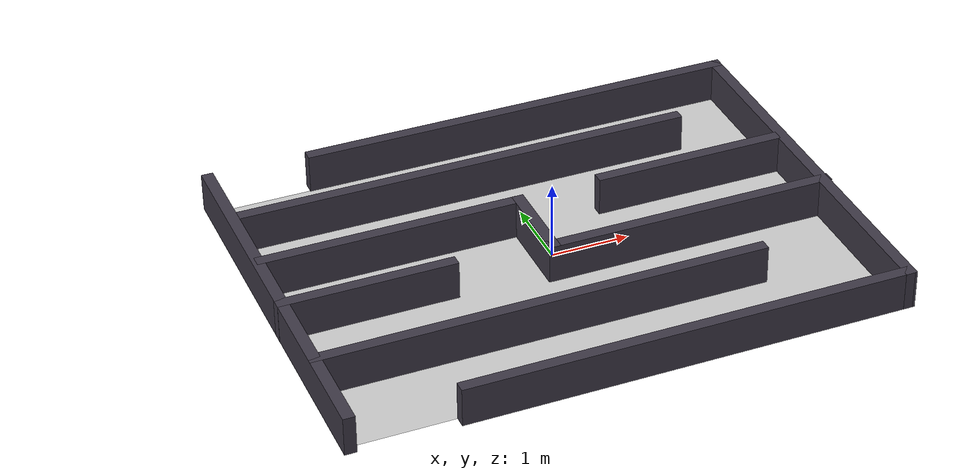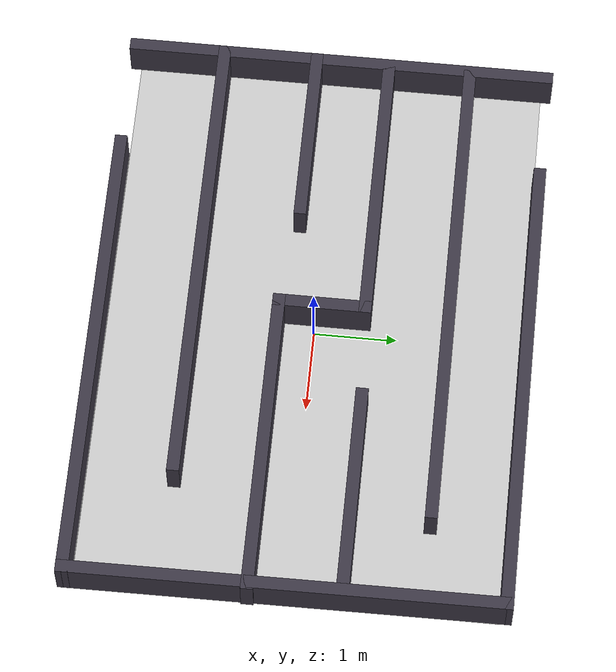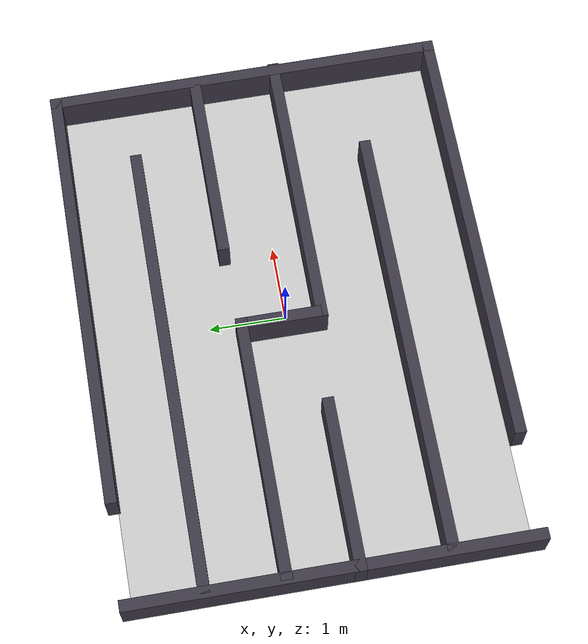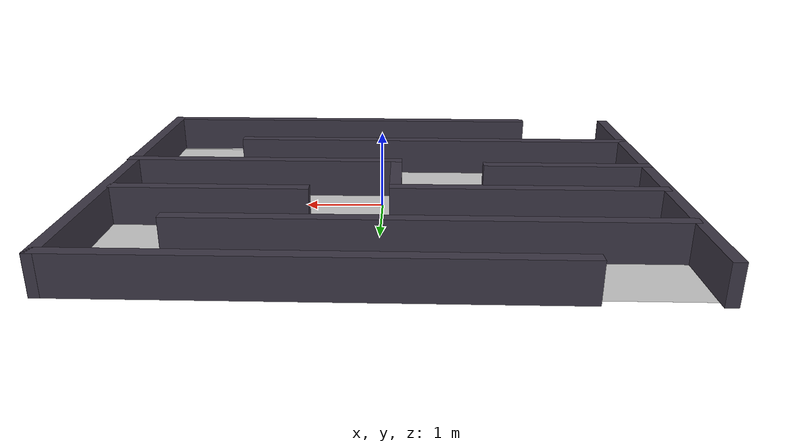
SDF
<?xml version="1.0"?>
<sdf version="1.4">
  <world name="labirinto">
    <scene>
      <ambient>0.8 0.8 0.8 1</ambient>
      <background>0.7 0.7 0.7 1</background>
      <shadows>true</shadows>
    </scene>

  <!-- A global light source  -->
    <include>
      <uri>model://sun</uri>
      <pose> -2.0 2.0 2.0 0 0 0</pose>
    </include>

  <!-- Piso da sala - circuito -->
    <include>
      <uri>model://labirinto/pisosala</uri>
      <pose> 0 0 0 0 0 0</pose>
    </include>

  <!-- paredes do labirinto -->
    <include>
      <uri>model://labirinto/paredes-labirinto</uri>
      <pose> -0.033383 -0.014962 0 0 0 0</pose>
    </include>

  <!-- fisica do mundo -->
    <physics type="ode">
      <real_time_update_rate>1000.0</real_time_update_rate>
      <max_step_size>0.001</max_step_size>
      <real_time_factor>1</real_time_factor>
      <ode>
        <solver>
          <type>quick</type>
          <iters>150</iters>
          <precon_iters>0</precon_iters>
          <sor>1.400000</sor>
          <use_dynamic_moi_rescaling>1</use_dynamic_moi_rescaling>
        </solver>
        <constraints>
          <cfm>0.00001</cfm>
          <erp>0.2</erp>
          <contact_max_correcting_vel>2000.000000</contact_max_correcting_vel>
          <contact_surface_layer>0.01000</contact_surface_layer>
        </constraints>
      </ode>
    </physics>

  <!-- posicao camera inicial -->
    <gui fullscreen='0'>
      <camera name='user_camera'>
        <pose frame=''>0.238775 -6.8831 10.8485 -0 0.979642 1.5602</pose>
        <view_controller>orbit</view_controller>
        <projection_type>perspective</projection_type>
      </camera>
    </gui>

  </world>

</sdf>

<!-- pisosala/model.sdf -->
<sdf version="1.6">
  <model name="piso_sala">
    <static>true</static>
    <link name="course_link">
      <collision name="course_collision">
        <geometry>
          <plane>
            <normal>0 0 1</normal>
            <size>7 5</size>
          </plane>
        </geometry>
        <surface>
          <friction>
            <ode>
              <mu>100</mu>
              <mu2>50</mu2>
            </ode>
          </friction>
        </surface>
      </collision>
      <visual name="course_visual">
        <cast_shadows>false</cast_shadows>
        <geometry>
	        <plane>
            <normal>0 0 1</normal>
            <size>7 5</size>
          </plane>
        </geometry>
	      <material>
          <script>
            <uri>model://caixas_coloridas/pisosala/materials/scripts</uri>
            <uri>model://caixas_coloridas/pisosala/materials/textures</uri>
            <name>pisosala</name>
          </script>
        </material>
      </visual>
    </link>
  </model>
</sdf>

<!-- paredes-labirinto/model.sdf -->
<sdf version='1.7'>
  <model name='labirinto_novo'>
    <pose>-0.045035 0.006 0 0 -0 0</pose>
    <link name='Wall_20'>
      <collision name='Wall_20_Collision'>
        <geometry>
          <box>
            <size>5.25 0.15 0.5</size>
          </box>
        </geometry>
        <pose>0 0 0.25 0 -0 0</pose>
      </collision>
      <visual name='Wall_20_Visual'>
        <pose>0 0 0.25 0 -0 0</pose>
        <geometry>
          <box>
            <size>5.25 0.15 0.5</size>
          </box>
        </geometry>
        <material>
          <script>
            <uri>file://media/materials/scripts/gazebo.material</uri>
            <name>Gazebo/Grey</name>
          </script>
          <ambient>0.239216 0.219608 0.27451 1</ambient>
        </material>
        <meta>
          <layer>0</layer>
        </meta>
      </visual>
      <pose>-3.49296 0.014 0 0 -0 -1.5708</pose>
    </link>
    <link name='Wall_21'>
      <collision name='Wall_21_Collision'>
        <geometry>
          <box>
            <size>5.75 0.15 0.5</size>
          </box>
        </geometry>
        <pose>0 0 0.25 0 -0 0</pose>
      </collision>
      <visual name='Wall_21_Visual'>
        <pose>0 0 0.25 0 -0 0</pose>
        <geometry>
          <box>
            <size>5.75 0.15 0.5</size>
          </box>
        </geometry>
        <material>
          <script>
            <uri>file://media/materials/scripts/gazebo.material</uri>
            <name>Gazebo/Grey</name>
          </script>
          <ambient>0.239216 0.219608 0.27451 1</ambient>
        </material>
        <meta>
          <layer>0</layer>
        </meta>
      </visual>
      <pose>-0.691965 -1.433 0 0 -0 0</pose>
    </link>
    <link name='Wall_23'>
      <collision name='Wall_23_Collision'>
        <geometry>
          <box>
            <size>6 0.15 0.5</size>
          </box>
        </geometry>
        <pose>0 0 0.25 0 -0 0</pose>
      </collision>
      <visual name='Wall_23_Visual'>
        <pose>0 0 0.25 0 -0 0</pose>
        <geometry>
          <box>
            <size>6 0.15 0.5</size>
          </box>
        </geometry>
        <material>
          <script>
            <uri>file://media/materials/scripts/gazebo.material</uri>
            <name>Gazebo/Grey</name>
          </script>
          <ambient>0.239216 0.219608 0.27451 1</ambient>
        </material>
        <meta>
          <layer>0</layer>
        </meta>
      </visual>
      <pose>-0.508965 1.614 0 0 -0 3.14159</pose>
    </link>
    <link name='Wall_26'>
      <collision name='Wall_26_Collision'>
        <geometry>
          <box>
            <size>5.75 0.15 0.5</size>
          </box>
        </geometry>
        <pose>0 0 0.25 0 -0 0</pose>
      </collision>
      <visual name='Wall_26_Visual'>
        <pose>0 0 0.25 0 -0 0</pose>
        <geometry>
          <box>
            <size>5.75 0.15 0.5</size>
          </box>
        </geometry>
        <material>
          <script>
            <uri>file://media/materials/scripts/gazebo.material</uri>
            <name>Gazebo/Grey</name>
          </script>
          <ambient>0.239216 0.219608 0.27451 1</ambient>
        </material>
        <meta>
          <layer>0</layer>
        </meta>
      </visual>
      <pose>0.658035 2.565 0 0 -0 3.14159</pose>
    </link>
    <link name='Wall_28'>
      <collision name='Wall_28_Collision'>
        <geometry>
          <box>
            <size>3.44791 0.15 0.5</size>
          </box>
        </geometry>
        <pose>0 0 0.25 0 -0 0</pose>
      </collision>
      <visual name='Wall_28_Visual'>
        <pose>0 0 0.25 0 -0 0</pose>
        <geometry>
          <box>
            <size>3.44791 0.15 0.5</size>
          </box>
        </geometry>
        <material>
          <script>
            <uri>file://media/materials/scripts/gazebo.material</uri>
            <name>Gazebo/Grey</name>
          </script>
          <ambient>0.239216 0.219608 0.27451 1</ambient>
        </material>
        <meta>
          <layer>0</layer>
        </meta>
      </visual>
      <pose>-1.79397 0.613 0 0 -0 0</pose>
    </link>
    <link name='Wall_29'>
      <collision name='Wall_29_Collision'>
        <geometry>
          <box>
            <size>1.18515 0.15 0.5</size>
          </box>
        </geometry>
        <pose>0 0 0.25 0 -0 0</pose>
      </collision>
      <visual name='Wall_29_Visual'>
        <pose>0 0 0.25 0 -0 0</pose>
        <geometry>
          <box>
            <size>1.18515 0.15 0.5</size>
          </box>
        </geometry>
        <material>
          <script>
            <uri>file://media/materials/scripts/gazebo.material</uri>
            <name>Gazebo/Grey</name>
          </script>
          <ambient>0.239216 0.219608 0.27451 1</ambient>
        </material>
        <meta>
          <layer>0</layer>
        </meta>
      </visual>
      <pose>-0.144965 0.095 0 0 -0 -1.5708</pose>
    </link>
    <link name='Wall_30'>
      <collision name='Wall_30_Collision'>
        <geometry>
          <box>
            <size>3.78886 0.15 0.5</size>
          </box>
        </geometry>
        <pose>0 0 0.25 0 -0 0</pose>
      </collision>
      <visual name='Wall_30_Visual'>
        <pose>0 0 0.25 0 -0 0</pose>
        <geometry>
          <box>
            <size>3.78886 0.15 0.5</size>
          </box>
        </geometry>
        <material>
          <script>
            <uri>file://media/materials/scripts/gazebo.material</uri>
            <name>Gazebo/Grey</name>
          </script>
          <ambient>0.239216 0.219608 0.27451 1</ambient>
        </material>
        <meta>
          <layer>0</layer>
        </meta>
      </visual>
      <pose>1.67454 -0.423 0 0 -0 0</pose>
    </link>
    <link name='Wall_32'>
      <collision name='Wall_32_Collision'>
        <geometry>
          <box>
            <size>2.25 0.15 0.5</size>
          </box>
        </geometry>
        <pose>0 0 0.25 0 -0 0</pose>
      </collision>
      <visual name='Wall_32_Visual'>
        <pose>0 0 0.25 0 -0 0</pose>
        <geometry>
          <box>
            <size>2.25 0.15 0.5</size>
          </box>
        </geometry>
        <material>
          <script>
            <uri>file://media/materials/scripts/gazebo.material</uri>
            <name>Gazebo/Grey</name>
          </script>
          <ambient>0.239216 0.219608 0.27451 1</ambient>
        </material>
        <meta>
          <layer>0</layer>
        </meta>
      </visual>
      <pose>-2.44396 -0.287 0 0 -0 3.14159</pose>
    </link>
    <link name='Wall_34'>
      <collision name='Wall_34_Collision'>
        <geometry>
          <box>
            <size>2.5 0.15 0.5</size>
          </box>
        </geometry>
        <pose>0 0 0.25 0 -0 0</pose>
      </collision>
      <visual name='Wall_34_Visual'>
        <pose>0 0 0.25 0 -0 0</pose>
        <geometry>
          <box>
            <size>2.5 0.15 0.5</size>
          </box>
        </geometry>
        <material>
          <script>
            <uri>file://media/materials/scripts/gazebo.material</uri>
            <name>Gazebo/Grey</name>
          </script>
          <ambient>0.239216 0.219608 0.27451 1</ambient>
        </material>
        <meta>
          <layer>0</layer>
        </meta>
      </visual>
      <pose>2.17103 0.673 0 0 -0 0</pose>
    </link>
    <link name='Wall_17'>
      <collision name='Wall_17_Collision'>
        <geometry>
          <box>
            <size>5.28062 0.15 0.5</size>
          </box>
        </geometry>
        <pose>0 0 0.25 0 -0 0</pose>
      </collision>
      <visual name='Wall_17_Visual'>
        <pose>0 0 0.25 0 -0 0</pose>
        <geometry>
          <box>
            <size>5.28062 0.15 0.5</size>
          </box>
        </geometry>
        <material>
          <script>
            <uri>file://media/materials/scripts/gazebo.material</uri>
            <name>Gazebo/Grey</name>
          </script>
          <ambient>0.239216 0.219608 0.27451 1</ambient>
        </material>
        <meta>
          <layer>0</layer>
        </meta>
      </visual>
      <pose>3.47303 -0 0 0 -0 -1.56495</pose>
    </link>
    <link name='Wall_19'>
      <collision name='Wall_19_Collision'>
        <geometry>
          <box>
            <size>5.75 0.15 0.5</size>
          </box>
        </geometry>
        <pose>0 0 0.25 0 -0 0</pose>
      </collision>
      <visual name='Wall_19_Visual'>
        <pose>0 0 0.25 0 -0 0</pose>
        <geometry>
          <box>
            <size>5.75 0.15 0.5</size>
          </box>
        </geometry>
        <material>
          <script>
            <uri>file://media/materials/scripts/gazebo.material</uri>
            <name>Gazebo/Grey</name>
          </script>
          <ambient>0.239216 0.219608 0.27451 1</ambient>
        </material>
        <meta>
          <layer>0</layer>
        </meta>
      </visual>
      <pose>0.688035 -2.565 0 0 -0 3.14159</pose>
    </link>
    <static>1</static>
  </model>
</sdf>
